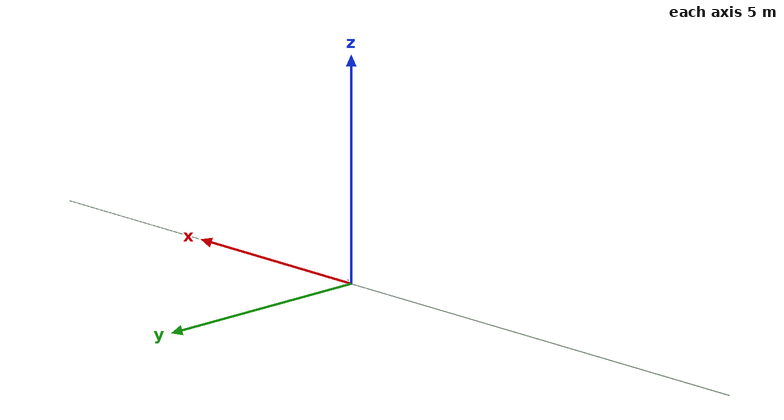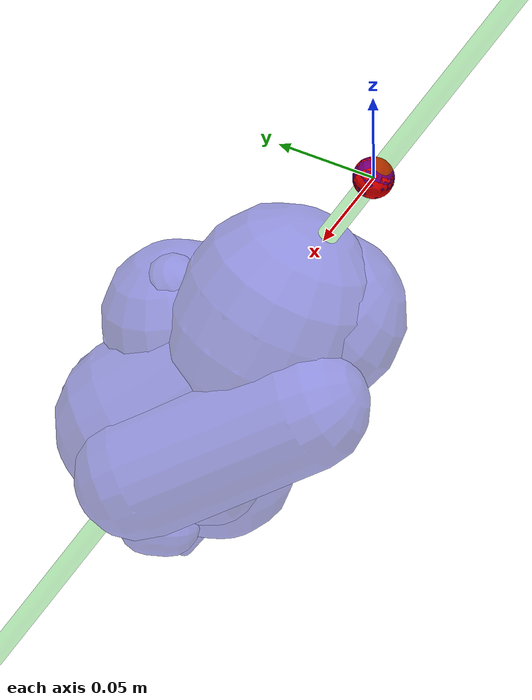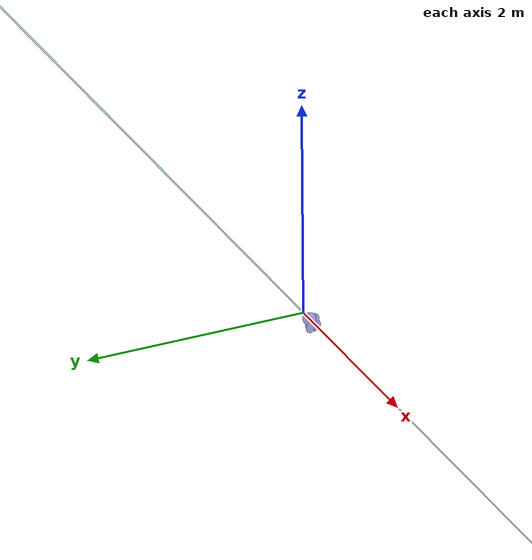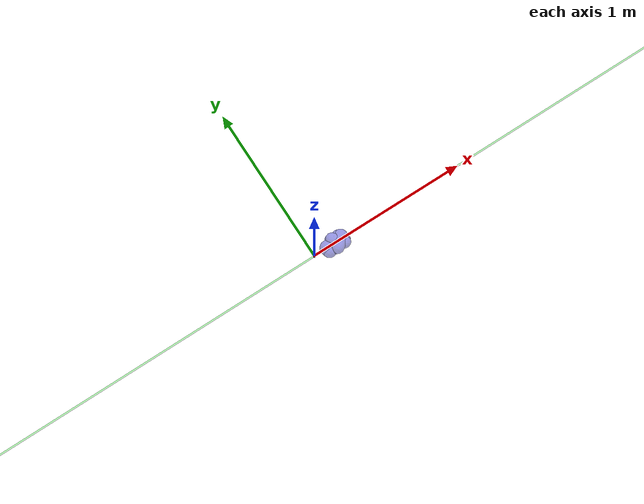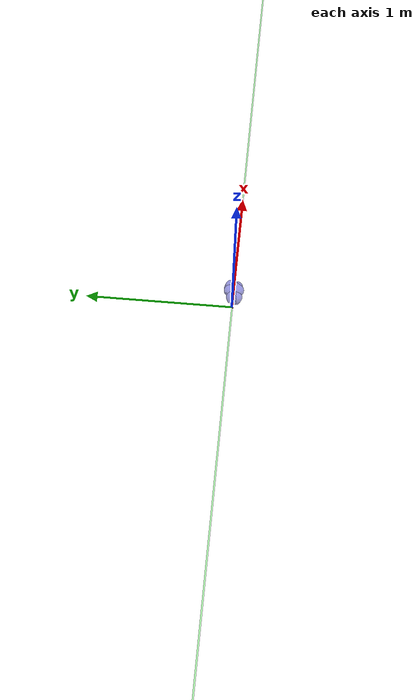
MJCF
<mujoco model="bd gripper">
  <compiler angle="radian"/>
  <option gravity="0 0 0"/>
  <option integrator="implicitfast" cone="elliptic" impratio="100"/>
  <visual>
    <global ellipsoidinertia="true"/>
  </visual>
  <asset>
    <material name="BlackAbs" rgba="0.1 0.1 0.1 1"/>
    <material name="wrap" rgba="0.878431 0.666666 0.227450 1"/>
    <mesh name="arm_link_wr1_0" file="meshes/bd_gripper/arm_link_wr1_0.obj"/>
    <mesh name="arm_link_wr1_1" file="meshes/bd_gripper/arm_link_wr1_1.obj"/>
    <mesh name="arm_link_fngr_0" file="meshes/bd_gripper/arm_link_fngr_0.obj"/>
    <mesh name="arm_link_fngr_1" file="meshes/bd_gripper/arm_link_fngr_1.obj"/>
    <mesh name="arm_link_wr1_coll" file="meshes/bd_gripper/arm_link_wr1.obj"/>
    <mesh name="front_jaw_coll" file="meshes/bd_gripper/front_jaw.obj"/>
    <mesh name="middle_jaw_coll" file="meshes/bd_gripper/middle_jaw.obj"/>
    <mesh name="jaw_tooth_coll" file="meshes/bd_gripper/jaw_tooth.obj"/>
    <mesh name="left_hinge_coll" file="meshes/bd_gripper/left_hinge.obj"/>
    <mesh name="left_finger_coll" file="meshes/bd_gripper/left_finger.obj"/>
    <mesh name="left_tooth_coll" file="meshes/bd_gripper/left_tooth.obj"/>
    <mesh name="right_hinge_coll" file="meshes/bd_gripper/right_hinge.obj"/>
    <mesh name="right_finger_coll" file="meshes/bd_gripper/right_finger.obj"/>
    <mesh name="right_tooth_coll" file="meshes/bd_gripper/right_tooth.obj"/>
  </asset>
  <default>
    <default class="spot_arm">
      <geom solref="0.004 1"/>
      <motor ctrlrange="-33.5 33.5" ctrllimited="true"/>
    </default>
    <default class="spot_arm_visual">
      <joint actuatorfrcrange="-1000 1000"/>
      <position kp="500" kv="40" inheritrange="1"/>
      <geom group="1" type="mesh" contype="0" conaffinity="0" solref="0.004 1"/>
    </default>
    <default class="spot_arm_collision">
      <joint actuatorfrcrange="-1000 1000"/>
      <position kp="500" kv="40" inheritrange="1"/>
      <geom group="0" type="mesh" solref="0.004 1"/>
    </default>
  </default>
  <worldbody>
    <body name="right_gripper" pos="0 0 0" quat="1 0 0 0">
      <site name="ft_frame" pos="0 0 0" size="0.01 0.01 0.01" rgba="1 0 0 1" type="sphere" group="1"/>
      <inertial pos="0 0 0.0" quat="0.707107 0.707107 0 0" mass="0.3" diaginertia="0.09 0.07 0.05"/>
      <body name="eef" pos="0 0 0.0" quat="0.707 0. -0.707 0.">
        <site name="grip_site" pos="0 0 0" size="0.01 0.01 0.01" rgba="0 0 1 0.5" type="sphere" group="1"/>
        <site name="ee_x" pos="0.1 0 0" size="0.005 .1" quat="0.707105  0 0.707108 0 " rgba="1 0 0 0" type="cylinder" group="1"/>
        <site name="ee_y" pos="0 0.1 0" size="0.005 .1" quat="0.707105 0.707108 0 0" rgba="0 1 0 0" type="cylinder" group="1"/>
        <site name="ee_z" pos="0 0 0.1" size="0.005 .1" quat="1 0 0 0" rgba="0 0 1 0" type="cylinder" group="1"/>
        <site name="grip_site_cylinder" pos="0 0 0" size="0.005 10" rgba="0 1 0 0.3" type="cylinder" group="1"/>
      </body>
      <body name="stator">
        <geom material="wrap" class="spot_arm_visual" type="capsule" pos="0.144170 0.004046 -0.053415" quat="0.694110 -0.384659 0.608481 0.000000" size="0.030878 0.045140" rgba="0.2 0.2 0.8 0.5"/>
        <geom material="BlackAbs" class="spot_arm_visual" type="capsule" pos="0.137836 0.002819 -0.012168" quat="0.648079 -0.347070 0.677890 0.000000" size="0.042228 0.051042" rgba="0.2 0.2 0.8 0.5"/>
        <geom class="spot_arm_collision" type="capsule" pos="0.101758 0.000078 -0.008608" quat="0.590122 0.025707 0.806905 0.000000" size="0.047011 0.010967" rgba="0.2 0.2 0.8 0.5"/>
        <geom class="spot_arm_collision" type="capsule" pos="0.216204 -0.000291 -0.047423" quat="0.741886 -0.598238 0.302848 0.000000" size="0.015008 0.004562" rgba="0.2 0.2 0.8 0.5"/>
        <geom class="spot_arm_collision" type="capsule" pos="0.165135 0.005786 -0.047553" quat="0.730207 0.540415 0.418030 0.000000" size="0.024801 0.014359" rgba="0.2 0.2 0.8 0.5"/>
        <geom class="spot_arm_collision" type="capsule" pos="0.223648 0.000022 -0.035094" quat="0.702849 -0.711307 0.006664 0.000000" size="0.003258 0.008585" rgba="0.2 0.2 0.8 0.5"/>
        <body name="mover" pos="0.11745 0 0.01482">
          <inertial pos="0.0478787 -0.000206768 -0.0162879" quat="0 1 0 1" mass="0.2" diaginertia="0.000391278 0.000300713 0.000143996"/>
          <joint name="arm_f1x" axis="0 1 0" range="-1.57 0" damping="0.2" armature="1.0" frictionloss="0.1"/>
          <geom material="wrap" class="spot_arm_visual" type="capsule" pos="0.050386 -0.004664 -0.012451" quat="0.612950 -0.531185 0.584923 0.000000" size="0.041609 0.036819" rgba="0.2 0.2 0.8 0.5"/>
          <geom material="BlackAbs" class="spot_arm_visual" type="capsule" pos="0.049398 0.004182 -0.017537" quat="0.589983 0.532913 0.606567 0.000000" size="0.037864 0.039804" rgba="0.2 0.2 0.8 0.5"/>
          <geom class="spot_arm_collision" type="capsule" pos="0.010735 0.044028 -0.003942" quat="0.797917 0.022950 0.602331 0.000000" size="0.014372 0.012369" rgba="0.2 0.2 0.8 0.5"/>
          <geom class="spot_arm_collision" type="capsule" pos="0.073157 0.025616 -0.023462" quat="0.868501 -0.186899 -0.459103 0.000000" size="0.015901 0.043100" rgba="0.2 0.2 0.8 0.5"/>
          <geom class="spot_arm_collision" type="capsule" pos="0.103608 0.024626 -0.052557" quat="0.851803 -0.179309 -0.492219 0.000000" size="0.003947 0.010922" rgba="0.2 0.2 0.8 0.5"/>
          <geom class="spot_arm_collision" type="capsule" pos="0.009242 -0.044092 -0.003947" quat="0.761805 -0.031066 0.647062 0.000000" size="0.013884 0.011756" rgba="0.2 0.2 0.8 0.5"/>
          <geom class="spot_arm_collision" type="capsule" pos="0.073146 -0.025632 -0.023435" quat="0.869680 0.187337 -0.456685 0.000000" size="0.015817 0.043211" rgba="0.2 0.2 0.8 0.5"/>
          <geom class="spot_arm_collision" type="capsule" pos="0.103598 -0.024634 -0.052547" quat="0.521705 -0.295988 0.800134 0.000000" size="0.003901 0.010986" rgba="0.2 0.2 0.8 0.5"/>
        </body>
      </body>
    </body>
  </worldbody>
  <contact>
    <exclude name="exclude_two_bodies" body1="stator" body2="mover"/>
  </contact>
  <actuator>
    <position class="spot_arm" name="arm_f1x" joint="arm_f1x" ctrllimited="true" ctrlrange="-1.57 0" forcelimited="true" forcerange="-200 200" kp="300" kv="40"/>
  </actuator>
  <sensor>
    <force name="force_ee" site="ft_frame"/>
    <torque name="torque_ee" site="ft_frame"/>
  </sensor>
</mujoco>
